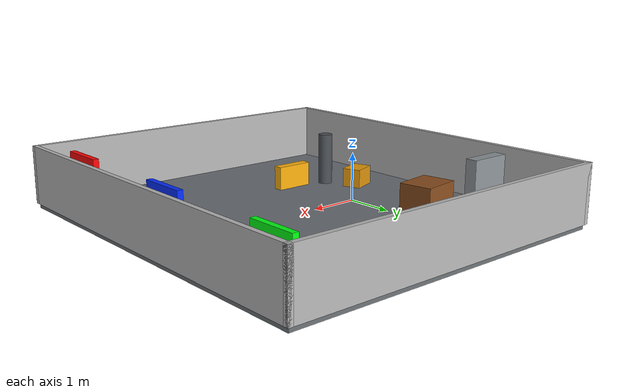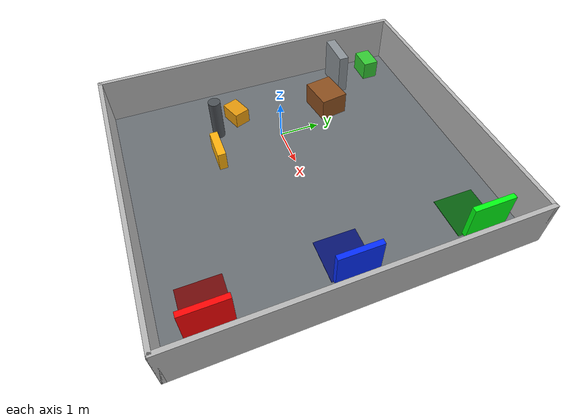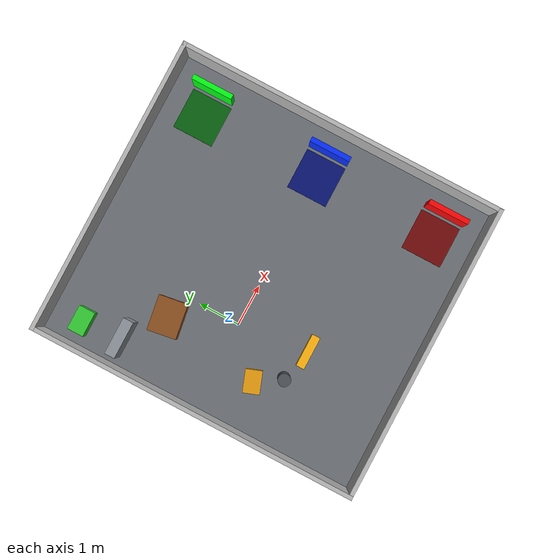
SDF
<?xml version="1.0"?>
<sdf version="1.9">
  <world name="warehouse">

    <!-- ================= Physics ================= -->
    <physics name="fast_stable" type="ignored">
      <max_step_size>0.004</max_step_size>
      <real_time_factor>1.0</real_time_factor>
    </physics>

    <plugin filename="gz-sim-physics-system"
            name="gz::sim::systems::Physics"/>

    <plugin filename="gz-sim-user-commands-system"
            name="gz::sim::systems::UserCommands"/>

    <plugin filename="gz-sim-scene-broadcaster-system"
            name="gz::sim::systems::SceneBroadcaster"/>

    <plugin filename="gz-sim-sensors-system"
            name="gz::sim::systems::Sensors">
      <render_engine>ogre2</render_engine>
    </plugin>

    <gravity>0 0 -9.81</gravity>

    <magnetic_field>
      5.64e-6 22.43e-6 -42.82e-6
    </magnetic_field>

    <atmosphere type="adiabatic"/>

    <!-- ================= Scene ================= -->

    <scene>

      <ambient>
        0.58 0.58 0.58 1
      </ambient>

      <background>
        0.12 0.15 0.20 1
      </background>

      <grid>false</grid>

      <shadows>true</shadows>

    </scene>

    <!-- ================= Lighting ================= -->

    <light name="hub_light" type="point">

      <pose>
        -1.0 0 3.5 0 0 0
      </pose>

      <diffuse>
        0.96 0.95 0.92 1
      </diffuse>

      <specular>
        0.25 0.25 0.25 1
      </specular>

      <attenuation>
        <range>15</range>
        <constant>0.30</constant>
        <linear>0.03</linear>
        <quadratic>0.005</quadratic>
      </attenuation>

      <cast_shadows>true</cast_shadows>

    </light>

    <light name="center_light" type="point">

      <pose>
        2.2 0 3.5 0 0 0
      </pose>

      <diffuse>
        0.96 0.95 0.92 1
      </diffuse>

      <specular>
        0.25 0.25 0.25 1
      </specular>

      <attenuation>
        <range>16</range>
        <constant>0.30</constant>
        <linear>0.03</linear>
        <quadratic>0.005</quadratic>
      </attenuation>

      <cast_shadows>true</cast_shadows>

    </light>

    <light name="dock_light" type="point">

      <pose>
        4.6 0 3.5 0 0 0
      </pose>

      <diffuse>
        0.96 0.95 0.92 1
      </diffuse>

      <specular>
        0.25 0.25 0.25 1
      </specular>

      <attenuation>
        <range>14</range>
        <constant>0.30</constant>
        <linear>0.03</linear>
        <quadratic>0.005</quadratic>
      </attenuation>

      <cast_shadows>true</cast_shadows>

    </light>

    <light name="fill_light"
           type="directional">

      <pose>
        0 0 3 0.25 -0.30 0
      </pose>

      <direction>
        -0.25 0.15 -1
      </direction>

      <diffuse>
        0.45 0.50 0.60 1
      </diffuse>

      <specular>
        0.10 0.10 0.10 1
      </specular>

    </light>

    <!-- ================= Floor ================= -->

    <model name="warehouse_floor">

      <static>true</static>

      <link name="link">

        <collision name="collision">

          <geometry>

            <box>

              <size>
                7.2 8.0 0.10
              </size>

            </box>

          </geometry>

        </collision>

        <visual name="visual">

          <geometry>

            <box>

              <size>
                7.2 8.0 0.10
              </size>

            </box>

          </geometry>

          <material>

            <ambient>
              0.32 0.33 0.35 1
            </ambient>

            <diffuse>
              0.42 0.44 0.46 1
            </diffuse>

            <specular>
              0.15 0.15 0.15 1
            </specular>

          </material>

        </visual>

        <pose>
          1.4 0 -0.05 0 0 0
        </pose>

      </link>

    </model>

    <!-- ================= Warehouse Walls ================= -->

    <model name="left_wall">

      <static>true</static>

      <pose>
        -2.2 0 0.60 0 0 0
      </pose>

      <link name="link">

        <collision name="collision">

          <geometry>

            <box>

              <size>
                0.10 8.1 1.20
              </size>

            </box>

          </geometry>

        </collision>

        <visual name="visual">

          <geometry>

            <box>

              <size>
                0.10 8.1 1.20
              </size>

            </box>

          </geometry>

        </visual>

      </link>

    </model>

    <model name="right_wall">

      <static>true</static>

      <pose>
        5.0 0 0.60 0 0 0
      </pose>

      <link name="link">

        <collision name="collision">

          <geometry>

            <box>

              <size>
                0.10 8.1 1.20
              </size>

            </box>

          </geometry>

        </collision>

        <visual name="visual">

          <geometry>

            <box>

              <size>
                0.10 8.1 1.20
              </size>

            </box>

          </geometry>

        </visual>

      </link>

    </model>

    <model name="north_wall">

      <static>true</static>

      <pose>
        1.4 4.0 0.60 0 0 0
      </pose>

      <link name="link">

        <collision name="collision">

          <geometry>

            <box>

              <size>
                7.3 0.10 1.20
              </size>

            </box>

          </geometry>

        </collision>

        <visual name="visual">

          <geometry>

            <box>

              <size>
                7.3 0.10 1.20
              </size>

            </box>

          </geometry>

        </visual>

      </link>

    </model>

    <model name="south_wall">

      <static>true</static>

      <pose>
        1.4 -4.0 0.60 0 0 0
      </pose>

      <link name="link">

        <collision name="collision">

          <geometry>

            <box>

              <size>
                7.3 0.10 1.20
              </size>

            </box>

          </geometry>

        </collision>

        <visual name="visual">

          <geometry>

            <box>

              <size>
                7.3 0.10 1.20
              </size>

            </box>

    <!-- ================= RED AISLE ================= -->

    <model name="red_shelf_left">

      <static>true</static>

      <pose>
        2.5 -3.70 0.60 0 0 0
      </pose>

      <link name="link">

        <collision name="collision">

          <geometry>

            <box>

              <size>
                5.0 0.12 1.20
              </size>

            </box>

          </geometry>

        </collision>

        <visual name="visual">

          <geometry>

            <box>

              <size>
                5.0 0.12 1.20
              </size>

            </box>

          </geometry>

          <material>

            <ambient>
              0.32 0.34 0.36 1
            </ambient>

            <diffuse>
              0.48 0.50 0.54 1
            </diffuse>

          </material>

        </visual>

      </link>

    </model>

    <model name="red_shelf_right">

      <static>true</static>

      <pose>
        2.5 -2.30 0.60 0 0 0
      </pose>

      <link name="link">

        <collision name="collision">

          <geometry>

            <box>

              <size>
                5.0 0.12 1.20
              </size>

            </box>

          </geometry>

        </collision>

        <visual name="visual">

          <geometry>

            <box>

              <size>
                5.0 0.12 1.20
              </size>

            </box>

          </geometry>

          <material>

            <ambient>
              0.32 0.34 0.36 1
            </ambient>

            <diffuse>
              0.48 0.50 0.54 1
            </diffuse>

          </material>

        </visual>

      </link>

    </model>

    <!-- ================= BLUE AISLE ================= -->

    <model name="blue_shelf_left">

      <static>true</static>

      <pose>
        2.5 -0.70 0.60 0 0 0
      </pose>

      <link name="link">

        <collision name="collision">

          <geometry>

            <box>

              <size>
                5.0 0.12 1.20
              </size>

            </box>

          </geometry>

        </collision>

        <visual name="visual">

          <geometry>

            <box>

              <size>
                5.0 0.12 1.20
              </size>

            </box>

          </geometry>

          <material>

            <ambient>
              0.32 0.34 0.36 1
            </ambient>

            <diffuse>
              0.48 0.50 0.54 1
            </diffuse>

          </material>

        </visual>

      </link>

    </model>

    <model name="blue_shelf_right">

      <static>true</static>

      <pose>
        2.5 0.70 0.60 0 0 0
      </pose>

      <link name="link">

        <collision name="collision">

          <geometry>

            <box>

              <size>
                5.0 0.12 1.20
              </size>

            </box>

          </geometry>

        </collision>

        <visual name="visual">

          <geometry>

            <box>

              <size>
                5.0 0.12 1.20
              </size>

            </box>

          </geometry>

          <material>

            <ambient>
              0.32 0.34 0.36 1
            </ambient>

            <diffuse>
              0.48 0.50 0.54 1
            </diffuse>

          </material>

        </visual>

      </link>

    </model>

    <!-- ================= GREEN AISLE ================= -->

    <model name="green_shelf_left">

      <static>true</static>

      <pose>
        2.5 2.30 0.60 0 0 0
      </pose>

      <link name="link">

        <collision name="collision">

          <geometry>

            <box>

              <size>
                5.0 0.12 1.20
              </size>

            </box>

          </geometry>

        </collision>

        <visual name="visual">

          <geometry>

            <box>

              <size>
                5.0 0.12 1.20
              </size>

            </box>

          </geometry>

          <material>

            <ambient>
              0.32 0.34 0.36 1
            </ambient>

            <diffuse>
              0.48 0.50 0.54 1
            </diffuse>

          </material>

        </visual>

      </link>

    </model>

    <model name="green_shelf_right">

      <static>true</static>

      <pose>
        2.5 3.70 0.60 0 0 0
      </pose>

      <link name="link">

        <collision name="collision">

          <geometry>

            <box>

              <size>
                5.0 0.12 1.20
              </size>

            </box>

          </geometry>

        </collision>

        <visual name="visual">

          <geometry>

            <box>

              <size>
                5.0 0.12 1.20
              </size>

            </box>

          </geometry>

          <material>

            <ambient>
              0.32 0.34 0.36 1
            </ambient>

            <diffuse>
              0.48 0.50 0.54 1
            </diffuse>

          </material>

        </visual>

      </link>

    </model>

          </geometry>

        </visual>

      </link>

    </model>
    <!-- ===================== DELIVERY STATIONS ===================== -->

    <!-- RED DELIVERY BAY -->

    <model name="red_delivery_station">

      <static>true</static>

      <pose>
        4.45 -3.00 0.65 0 0 0
      </pose>

      <link name="sign">

        <collision name="collision">

          <geometry>

            <box>

              <size>
                0.12 1.00 0.90
              </size>

            </box>

          </geometry>

        </collision>

        <visual name="visual">

          <geometry>

            <box>

              <size>
                0.12 1.00 0.90
              </size>

            </box>

          </geometry>

          <material>

            <ambient>
              0.75 0.01 0.01 1
            </ambient>

            <diffuse>
              1.0 0.02 0.02 1
            </diffuse>

            <emissive>
              0.12 0 0 1
            </emissive>

          </material>

        </visual>

      </link>

    </model>

    <model name="red_dock_marker">

      <static>true</static>

      <pose>
        3.85 -3.00 0.008 0 0 0
      </pose>

      <link name="link">

        <visual name="visual">

          <geometry>

            <box>

              <size>
                1.00 1.00 0.012
              </size>

            </box>

          </geometry>

          <material>

            <diffuse>
              0.45 0.04 0.04 1
            </diffuse>

          </material>

        </visual>

      </link>

    </model>

    <!-- BLUE DELIVERY BAY -->

    <model name="blue_delivery_station">

      <static>true</static>

      <pose>
        4.45 0.00 0.65 0 0 0
      </pose>

      <link name="sign">

        <collision name="collision">

          <geometry>

            <box>

              <size>
                0.12 1.00 0.90
              </size>

            </box>

          </geometry>

        </collision>

        <visual name="visual">

          <geometry>

            <box>

              <size>
                0.12 1.00 0.90
              </size>

            </box>

          </geometry>

          <material>

            <ambient>
              0.01 0.08 0.72 1
            </ambient>

            <diffuse>
              0.02 0.18 1.0 1
            </diffuse>

            <emissive>
              0 0.02 0.14 1
            </emissive>

          </material>

        </visual>

      </link>

    </model>

    <model name="blue_dock_marker">

      <static>true</static>

      <pose>
        3.85 0.00 0.008 0 0 0
      </pose>

      <link name="link">

        <visual name="visual">

          <geometry>

            <box>

              <size>
                1.00 1.00 0.012
              </size>

            </box>

          </geometry>

          <material>

            <diffuse>
              0.03 0.08 0.45 1
            </diffuse>

          </material>

        </visual>

      </link>

    </model>

    <!-- GREEN DELIVERY BAY -->

    <model name="green_delivery_station">

      <static>true</static>

      <pose>
        4.45 3.00 0.65 0 0 0
      </pose>

      <link name="sign">

        <collision name="collision">

          <geometry>

            <box>

              <size>
                0.12 1.00 0.90
              </size>

            </box>

          </geometry>

        </collision>

        <visual name="visual">

          <geometry>

            <box>

              <size>
                0.12 1.00 0.90
              </size>

            </box>

          </geometry>

          <material>

            <ambient>
              0.01 0.62 0.05 1
            </ambient>

            <diffuse>
              0.01 1.0 0.08 1
            </diffuse>

            <emissive>
              0 0.10 0 1
            </emissive>

          </material>

        </visual>

      </link>

    </model>

    <model name="green_dock_marker">

      <static>true</static>

      <pose>
        3.85 3.00 0.008 0 0 0
      </pose>

      <link name="link">

        <visual name="visual">

          <geometry>

            <box>

              <size>
                1.00 1.00 0.012
              </size>

            </box>

          </geometry>

          <material>

            <diffuse>
              0.03 0.38 0.06 1
            </diffuse>

          </material>

        </visual>

      </link>

    </model>

    <!-- ===================== CHARGING STATION ===================== -->

    <model name="charging_station">

      <static>true</static>

      <pose>
        -1.60 3.20 0.25 0 0 0
      </pose>

      <link name="link">

        <collision name="collision">

          <geometry>

            <box>

              <size>
                0.60 0.40 0.50
              </size>

            </box>

          </geometry>

        </collision>

        <visual name="visual">

          <geometry>

            <box>

              <size>
                0.60 0.40 0.50
              </size>

            </box>

          </geometry>

          <material>

            <ambient>
              0.10 0.40 0.10 1
            </ambient>

            <diffuse>
              0.20 0.80 0.20 1
            </diffuse>

          </material>

        </visual>

      </link>

    </model>

    <!-- ===================== DECORATIVE RACK ===================== -->

    <model name="storage_rack">

      <static>true</static>

      <pose>
        -1.50 2.20 0.55 0 0 0
      </pose>

      <link name="link">

        <collision name="collision">

          <geometry>

            <box>

              <size>
                0.90 0.25 1.10
              </size>

            </box>

          </geometry>

        </collision>

        <visual name="visual">

          <geometry>

            <box>

              <size>
                0.90 0.25 1.10
              </size>

            </box>

          </geometry>

          <material>

            <ambient>
              0.40 0.42 0.45 1
            </ambient>

            <diffuse>
              0.55 0.58 0.60 1
            </diffuse>

          </material>

        </visual>

      </link>

    </model>
        <!-- ===================== NAVIGATION OBSTACLES ===================== -->

    <!-- Pallet Stack -->

    <model name="pallet_stack">

      <static>true</static>

      <pose>
        -0.60 1.50 0.30 0 0 0.15
      </pose>

      <link name="link">

        <collision name="collision">

          <geometry>

            <box>

              <size>
                0.85 0.70 0.60
              </size>

            </box>

          </geometry>

        </collision>

        <visual name="visual">

          <geometry>

            <box>

              <size>
                0.85 0.70 0.60
              </size>

            </box>

          </geometry>

          <material>

            <ambient>
              0.32 0.18 0.08 1
            </ambient>

            <diffuse>
              0.55 0.31 0.12 1
            </diffuse>

          </material>

        </visual>

      </link>

    </model>

    <!-- Support Pillar -->

    <model name="support_pillar">

      <static>true</static>

      <pose>
        -0.60 -1.50 0.55 0 0 0
      </pose>

      <link name="link">

        <collision name="collision">

          <geometry>

            <cylinder>

              <radius>
                0.15
              </radius>

              <length>
                1.10
              </length>

            </cylinder>

          </geometry>

        </collision>

        <visual name="visual">

          <geometry>

            <cylinder>

              <radius>
                0.15
              </radius>

              <length>
                1.10
              </length>

            </cylinder>

          </geometry>

          <material>

            <ambient>
              0.18 0.19 0.20 1
            </ambient>

            <diffuse>
              0.30 0.32 0.34 1
            </diffuse>

          </material>

        </visual>

      </link>

    </model>

    <!-- Forklift Dummy Obstacle -->

    <model name="forklift_block">

      <static>true</static>

      <pose>
        -1.00 -0.90 0.20 0 0 0.35
      </pose>

      <link name="link">

        <collision name="collision">

          <geometry>

            <box>

              <size>
                0.55 0.40 0.40
              </size>

            </box>

          </geometry>

        </collision>

        <visual name="visual">

          <geometry>

            <box>

              <size>
                0.55 0.40 0.40
              </size>

            </box>

          </geometry>

          <material>

            <ambient>
              0.55 0.35 0.02 1
            </ambient>

            <diffuse>
              0.90 0.60 0.05 1
            </diffuse>

          </material>

        </visual>

      </link>

    </model>

    <!-- Small Safety Barrier -->

    <model name="safety_barrier">

      <static>true</static>

      <pose>
        0.20 -1.70 0.25 0 0 0
      </pose>

      <link name="link">

        <collision name="collision">

          <geometry>

            <box>

              <size>
                0.80 0.20 0.50
              </size>

            </box>

          </geometry>

        </collision>

        <visual name="visual">

          <geometry>

            <box>

              <size>
                0.80 0.20 0.50
              </size>

            </box>

          </geometry>

          <material>

            <ambient>
              0.80 0.55 0.05 1
            </ambient>

            <diffuse>
              1.0 0.70 0.05 1
            </diffuse>

          </material>

        </visual>

      </link>

    </model>

    <!-- ===================== END OF WORLD ===================== -->

  </world>

</sdf>
